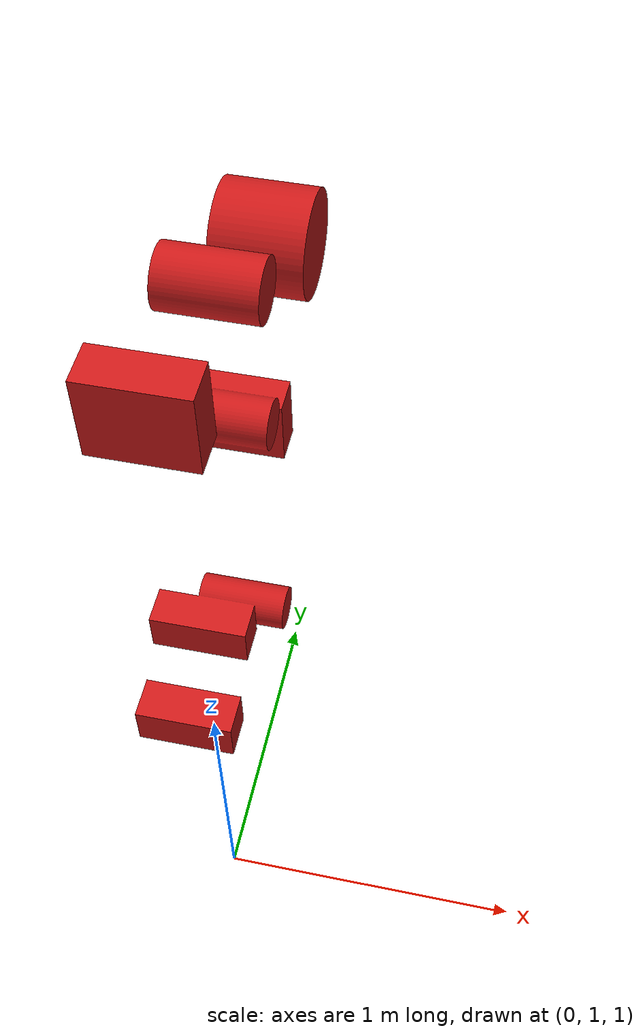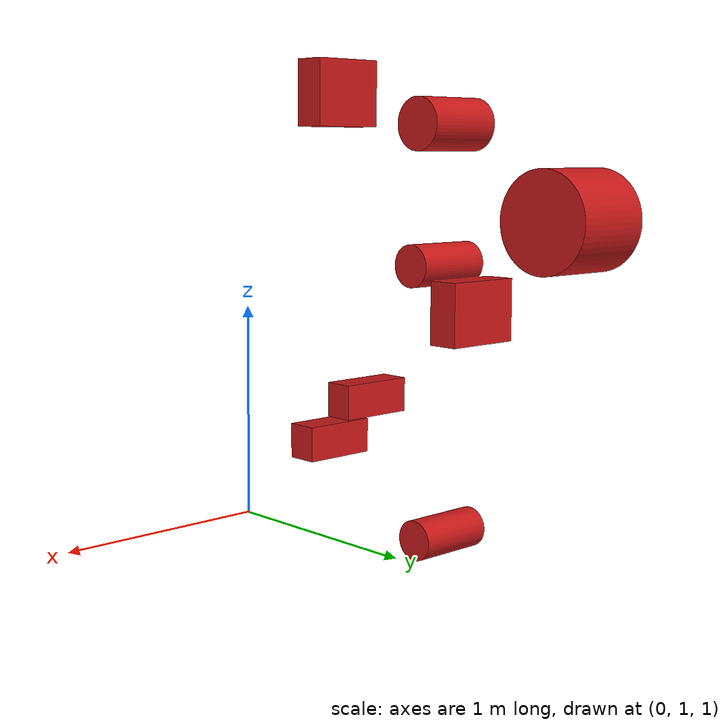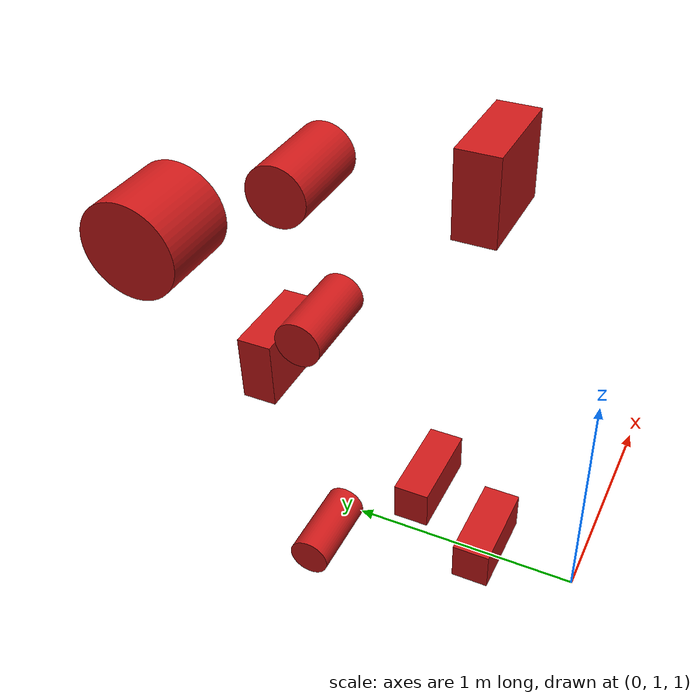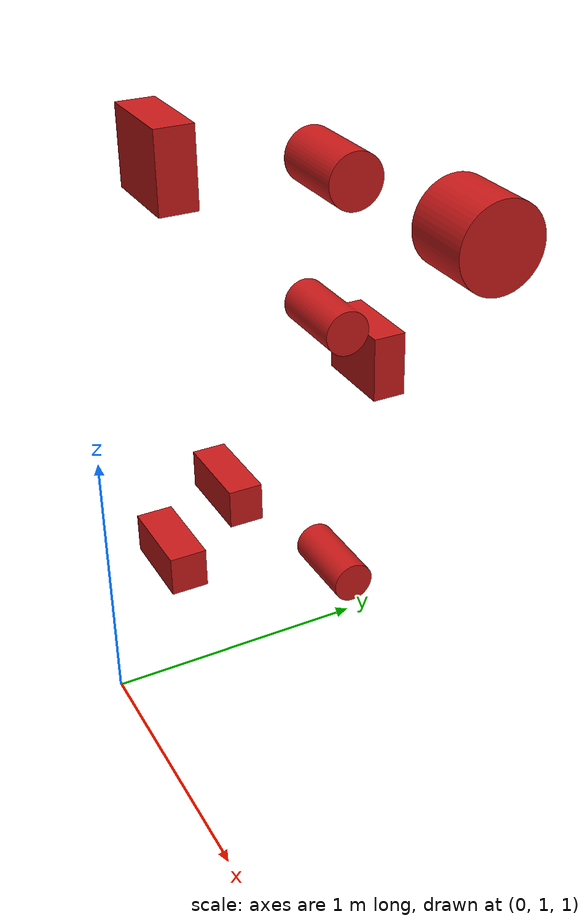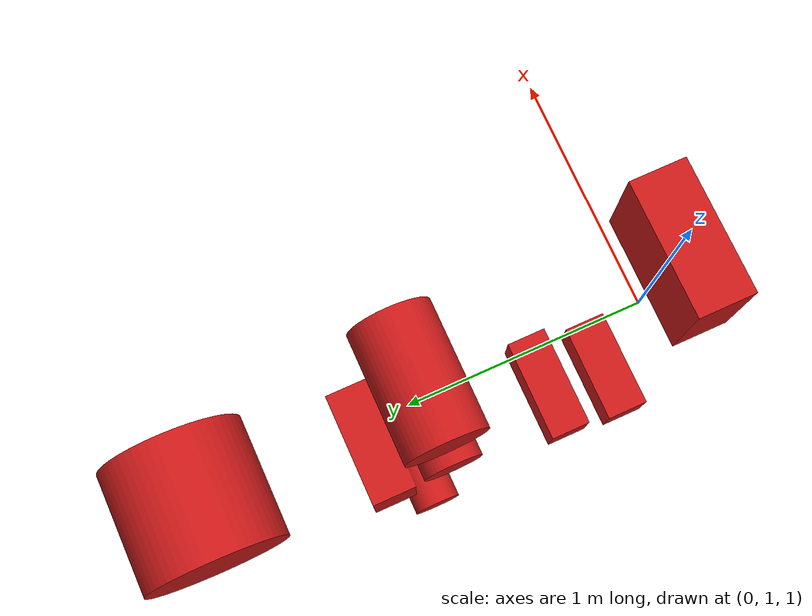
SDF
<?xml version="1.0"?>
<sdf version="1.6">
  <model name="obstaculos">
    <static>true</static>
    <pose>0 0 0 0 0 1.5708</pose>
    <link name="link">
      <visual name="visual">
        <geometry>
          <mesh>
            <uri>model://laberinto_real/meshes/obstaculos.stl</uri>
            <scale>0.001 0.001 0.001</scale>
          </mesh>
        </geometry>
        <material>
          <ambient>0.8 0.1 0.1 1</ambient>
          <diffuse>0.8 0.1 0.1 1</diffuse>
        </material>
      </visual>
      <collision name="collision">
        <geometry>
          <mesh>
            <uri>model://laberinto_real/meshes/obstaculos.stl</uri>
            <scale>0.001 0.001 0.001</scale>
          </mesh>
        </geometry>
      </collision>
    </link>
  </model>
</sdf>
